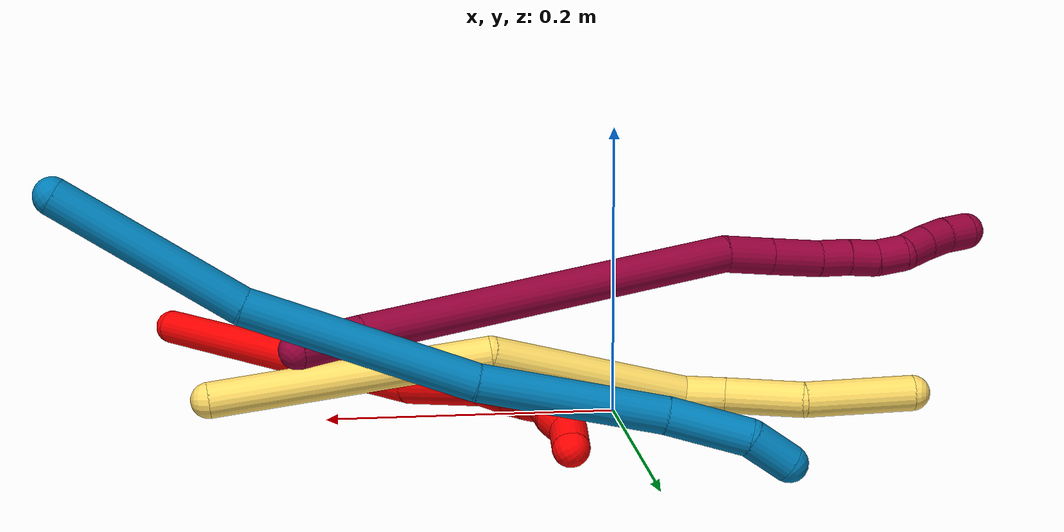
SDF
<sdf version="1.7">
 <world name="default">
  <model name="2">
   <static>0</static>
   <link name="2">
    <collision name="collision-cylinder-e_1_1_4">
     <pose>-0.038239 0.066086 -0.106243 -2.58513 -0.296604 0.96381</pose>
     <geometry><cylinder><radius>0.0125</radius><length>0.261666</length></cylinder></geometry>
     <surface>
      <friction><ode><mu>1.16</mu><mu2>1.16</mu2><slip1>0</slip1><slip2>0</slip2></ode></friction>
      <contact><ode><kp>1e+06</kp><kd>1</kd><max_vel>0</max_vel><min_depth>0.001</min_depth></ode></contact>
     </surface>
    </collision>
    <visual name="visual-cylinder-e_1_1_4">
     <pose>-0.038239 0.066086 -0.106243 -2.58513 -0.296604 0.96381</pose>
     <geometry><cylinder><radius>0.0125</radius><length>0.261666</length></cylinder></geometry>
     <material><ambient>1 0 0 1</ambient></material>
    </visual>
    <collision name="collision-cylinder-e_2_4_5">
     <pose>-0.092479 0.145703 -0.247485 -2.7727 -0.403086 1.66155</pose>
     <geometry><cylinder><radius>0.0125</radius><length>0.081585</length></cylinder></geometry>
     <surface>
      <friction><ode><mu>1.16</mu><mu2>1.16</mu2><slip1>0</slip1><slip2>0</slip2></ode></friction>
      <contact><ode><kp>1e+06</kp><kd>1</kd><max_vel>0</max_vel><min_depth>0.001</min_depth></ode></contact>
     </surface>
    </collision>
    <visual name="visual-cylinder-e_2_4_5">
     <pose>-0.092479 0.145703 -0.247485 -2.7727 -0.403086 1.66155</pose>
     <geometry><cylinder><radius>0.0125</radius><length>0.081585</length></cylinder></geometry>
     <material><ambient>1 0 0 1</ambient></material>
    </visual>
    <collision name="collision-cylinder-e_3_5_6">
     <pose>-0.125262 0.168226 -0.300786 -2.6849 -0.688588 1.99148</pose>
     <geometry><cylinder><radius>0.0125</radius><length>0.052819</length></cylinder></geometry>
     <surface>
      <friction><ode><mu>1.16</mu><mu2>1.16</mu2><slip1>0</slip1><slip2>0</slip2></ode></friction>
      <contact><ode><kp>1e+06</kp><kd>1</kd><max_vel>0</max_vel><min_depth>0.001</min_depth></ode></contact>
     </surface>
    </collision>
    <visual name="visual-cylinder-e_3_5_6">
     <pose>-0.125262 0.168226 -0.300786 -2.6849 -0.688588 1.99148</pose>
     <geometry><cylinder><radius>0.0125</radius><length>0.052819</length></cylinder></geometry>
     <material><ambient>1 0 0 1</ambient></material>
    </visual>
    <collision name="collision-cylinder-e_4_6_7">
     <pose>-0.149439 0.180814 -0.327362 -2.73158 -0.686654 2.08797</pose>
     <geometry><cylinder><radius>0.0125</radius><length>0.023329</length></cylinder></geometry>
     <surface>
      <friction><ode><mu>1.16</mu><mu2>1.16</mu2><slip1>0</slip1><slip2>0</slip2></ode></friction>
      <contact><ode><kp>1e+06</kp><kd>1</kd><max_vel>0</max_vel><min_depth>0.001</min_depth></ode></contact>
     </surface>
    </collision>
    <visual name="visual-cylinder-e_4_6_7">
     <pose>-0.149439 0.180814 -0.327362 -2.73158 -0.686654 2.08797</pose>
     <geometry><cylinder><radius>0.0125</radius><length>0.023329</length></cylinder></geometry>
     <material><ambient>1 0 0 1</ambient></material>
    </visual>
    <collision name="collision-cylinder-e_5_7_8">
     <pose>-0.161943 0.188079 -0.343679 -2.71372 -0.524039 1.77984</pose>
     <geometry><cylinder><radius>0.0125</radius><length>0.020422</length></cylinder></geometry>
     <surface>
      <friction><ode><mu>1.16</mu><mu2>1.16</mu2><slip1>0</slip1><slip2>0</slip2></ode></friction>
      <contact><ode><kp>1e+06</kp><kd>1</kd><max_vel>0</max_vel><min_depth>0.001</min_depth></ode></contact>
     </surface>
    </collision>
    <visual name="visual-cylinder-e_5_7_8">
     <pose>-0.161943 0.188079 -0.343679 -2.71372 -0.524039 1.77984</pose>
     <geometry><cylinder><radius>0.0125</radius><length>0.020422</length></cylinder></geometry>
     <material><ambient>1 0 0 1</ambient></material>
    </visual>
    <collision name="collision-cylinder-e_6_8_9">
     <pose>-0.174393 0.19704 -0.356152 -2.26762 -0.816232 1.49365</pose>
     <geometry><cylinder><radius>0.0125</radius><length>0.02015</length></cylinder></geometry>
     <surface>
      <friction><ode><mu>1.16</mu><mu2>1.16</mu2><slip1>0</slip1><slip2>0</slip2></ode></friction>
      <contact><ode><kp>1e+06</kp><kd>1</kd><max_vel>0</max_vel><min_depth>0.001</min_depth></ode></contact>
     </surface>
    </collision>
    <visual name="visual-cylinder-e_6_8_9">
     <pose>-0.174393 0.19704 -0.356152 -2.26762 -0.816232 1.49365</pose>
     <geometry><cylinder><radius>0.0125</radius><length>0.02015</length></cylinder></geometry>
     <material><ambient>1 0 0 1</ambient></material>
    </visual>
    <collision name="collision-cylinder-e_7_9_10">
     <pose>-0.187481 0.207984 -0.366501 -2.37936 -0.612196 1.3356</pose>
     <geometry><cylinder><radius>0.0125</radius><length>0.020002</length></cylinder></geometry>
     <surface>
      <friction><ode><mu>1.16</mu><mu2>1.16</mu2><slip1>0</slip1><slip2>0</slip2></ode></friction>
      <contact><ode><kp>1e+06</kp><kd>1</kd><max_vel>0</max_vel><min_depth>0.001</min_depth></ode></contact>
     </surface>
    </collision>
    <visual name="visual-cylinder-e_7_9_10">
     <pose>-0.187481 0.207984 -0.366501 -2.37936 -0.612196 1.3356</pose>
     <geometry><cylinder><radius>0.0125</radius><length>0.020002</length></cylinder></geometry>
     <material><ambient>1 0 0 1</ambient></material>
    </visual>
    <collision name="collision-cylinder-e_8_10_2">
     <pose>-0.200952 0.219665 -0.374482 -1.90019 -0.881034 1.16583</pose>
     <geometry><cylinder><radius>0.0125</radius><length>0.020027</length></cylinder></geometry>
     <surface>
      <friction><ode><mu>1.16</mu><mu2>1.16</mu2><slip1>0</slip1><slip2>0</slip2></ode></friction>
      <contact><ode><kp>1e+06</kp><kd>1</kd><max_vel>0</max_vel><min_depth>0.001</min_depth></ode></contact>
     </surface>
    </collision>
    <visual name="visual-cylinder-e_8_10_2">
     <pose>-0.200952 0.219665 -0.374482 -1.90019 -0.881034 1.16583</pose>
     <geometry><cylinder><radius>0.0125</radius><length>0.020027</length></cylinder></geometry>
     <material><ambient>1 0 0 1</ambient></material>
    </visual>
    <collision name="collision-sphere-2">
     <pose>-0.208677 0.225695 -0.376543 0 -0 0</pose>
     <geometry><sphere><radius>0.0125</radius></sphere></geometry>
     <surface>
      <friction><ode><mu>1.16</mu><mu2>1.16</mu2><slip1>0</slip1><slip2>0</slip2></ode></friction>
      <contact><ode><kp>1e+06</kp><kd>1</kd><max_vel>0</max_vel><min_depth>0.001</min_depth></ode></contact>
     </surface>
    </collision>
    <visual name="visual-sphere-2">
     <pose>-0.208677 0.225695 -0.376543 0 -0 0</pose>
     <geometry><sphere><radius>0.0125</radius></sphere></geometry>
     <material><ambient>1 0 0 1</ambient></material>
    </visual>
    <collision name="collision-sphere-10">
     <pose>-0.193228 0.213636 -0.372421 0 -0 0</pose>
     <geometry><sphere><radius>0.0125</radius></sphere></geometry>
     <surface>
      <friction><ode><mu>1.16</mu><mu2>1.16</mu2><slip1>0</slip1><slip2>0</slip2></ode></friction>
      <contact><ode><kp>1e+06</kp><kd>1</kd><max_vel>0</max_vel><min_depth>0.001</min_depth></ode></contact>
     </surface>
    </collision>
    <visual name="visual-sphere-10">
     <pose>-0.193228 0.213636 -0.372421 0 -0 0</pose>
     <geometry><sphere><radius>0.0125</radius></sphere></geometry>
     <material><ambient>1 0 0 1</ambient></material>
    </visual>
    <collision name="collision-sphere-9">
     <pose>-0.181734 0.202332 -0.360581 0 -0 0</pose>
     <geometry><sphere><radius>0.0125</radius></sphere></geometry>
     <surface>
      <friction><ode><mu>1.16</mu><mu2>1.16</mu2><slip1>0</slip1><slip2>0</slip2></ode></friction>
      <contact><ode><kp>1e+06</kp><kd>1</kd><max_vel>0</max_vel><min_depth>0.001</min_depth></ode></contact>
     </surface>
    </collision>
    <visual name="visual-sphere-9">
     <pose>-0.181734 0.202332 -0.360581 0 -0 0</pose>
     <geometry><sphere><radius>0.0125</radius></sphere></geometry>
     <material><ambient>1 0 0 1</ambient></material>
    </visual>
    <collision name="collision-sphere-4">
     <pose>-0.076478 0.132173 -0.212487 0 -0 0</pose>
     <geometry><sphere><radius>0.0125</radius></sphere></geometry>
     <surface>
      <friction><ode><mu>1.16</mu><mu2>1.16</mu2><slip1>0</slip1><slip2>0</slip2></ode></friction>
      <contact><ode><kp>1e+06</kp><kd>1</kd><max_vel>0</max_vel><min_depth>0.001</min_depth></ode></contact>
     </surface>
    </collision>
    <visual name="visual-sphere-4">
     <pose>-0.076478 0.132173 -0.212487 0 -0 0</pose>
     <geometry><sphere><radius>0.0125</radius></sphere></geometry>
     <material><ambient>1 0 0 1</ambient></material>
    </visual>
    <collision name="collision-sphere-1">
     <geometry><sphere><radius>0.0125</radius></sphere></geometry>
     <surface>
      <friction><ode><mu>1.16</mu><mu2>1.16</mu2><slip1>0</slip1><slip2>0</slip2></ode></friction>
      <contact><ode><kp>1e+06</kp><kd>1</kd><max_vel>0</max_vel><min_depth>0.001</min_depth></ode></contact>
     </surface>
    </collision>
    <visual name="visual-sphere-1">
     <geometry><sphere><radius>0.0125</radius></sphere></geometry>
     <material><ambient>1 0 0 1</ambient></material>
    </visual>
    <collision name="collision-sphere-8">
     <pose>-0.167053 0.191747 -0.351723 0 -0 0</pose>
     <geometry><sphere><radius>0.0125</radius></sphere></geometry>
     <surface>
      <friction><ode><mu>1.16</mu><mu2>1.16</mu2><slip1>0</slip1><slip2>0</slip2></ode></friction>
      <contact><ode><kp>1e+06</kp><kd>1</kd><max_vel>0</max_vel><min_depth>0.001</min_depth></ode></contact>
     </surface>
    </collision>
    <visual name="visual-sphere-8">
     <pose>-0.167053 0.191747 -0.351723 0 -0 0</pose>
     <geometry><sphere><radius>0.0125</radius></sphere></geometry>
     <material><ambient>1 0 0 1</ambient></material>
    </visual>
    <collision name="collision-sphere-5">
     <pose>-0.10848 0.159233 -0.282484 0 -0 0</pose>
     <geometry><sphere><radius>0.0125</radius></sphere></geometry>
     <surface>
      <friction><ode><mu>1.16</mu><mu2>1.16</mu2><slip1>0</slip1><slip2>0</slip2></ode></friction>
      <contact><ode><kp>1e+06</kp><kd>1</kd><max_vel>0</max_vel><min_depth>0.001</min_depth></ode></contact>
     </surface>
    </collision>
    <visual name="visual-sphere-5">
     <pose>-0.10848 0.159233 -0.282484 0 -0 0</pose>
     <geometry><sphere><radius>0.0125</radius></sphere></geometry>
     <material><ambient>1 0 0 1</ambient></material>
    </visual>
    <collision name="collision-sphere-6">
     <pose>-0.142044 0.177218 -0.319088 0 -0 0</pose>
     <geometry><sphere><radius>0.0125</radius></sphere></geometry>
     <surface>
      <friction><ode><mu>1.16</mu><mu2>1.16</mu2><slip1>0</slip1><slip2>0</slip2></ode></friction>
      <contact><ode><kp>1e+06</kp><kd>1</kd><max_vel>0</max_vel><min_depth>0.001</min_depth></ode></contact>
     </surface>
    </collision>
    <visual name="visual-sphere-6">
     <pose>-0.142044 0.177218 -0.319088 0 -0 0</pose>
     <geometry><sphere><radius>0.0125</radius></sphere></geometry>
     <material><ambient>1 0 0 1</ambient></material>
    </visual>
    <collision name="collision-sphere-7">
     <pose>-0.156834 0.18441 -0.335635 0 -0 0</pose>
     <geometry><sphere><radius>0.0125</radius></sphere></geometry>
     <surface>
      <friction><ode><mu>1.16</mu><mu2>1.16</mu2><slip1>0</slip1><slip2>0</slip2></ode></friction>
      <contact><ode><kp>1e+06</kp><kd>1</kd><max_vel>0</max_vel><min_depth>0.001</min_depth></ode></contact>
     </surface>
    </collision>
    <visual name="visual-sphere-7">
     <pose>-0.156834 0.18441 -0.335635 0 -0 0</pose>
     <geometry><sphere><radius>0.0125</radius></sphere></geometry>
     <material><ambient>1 0 0 1</ambient></material>
    </visual>
    <inertial>
     <pose>-0.084498 0.117308 -0.201082 0 -0 0</pose>
     <mass>0.5</mass>
     <inertia>
      <ixx>0.002036</ixx>
      <ixy>0</ixy>
      <ixz>0</ixz>
      <iyy>0.000745</iyy>
      <iyz>0</iyz>
      <izz>-0.000341</izz>
     </inertia>
    </inertial>
   </link>
   <pose>0.304371 -0.25389 0.009954 -2.10387 0.059486 -2.1515</pose>
  </model>
  <model name="5">
   <static>0</static>
   <link name="5">
    <collision name="collision-cylinder-e_1_1_4">
     <pose>-0.011616 -0.029266 0.091199 0.310525 -0.120684 -0.018912</pose>
     <geometry><cylinder><radius>0.0125</radius><length>0.192964</length></cylinder></geometry>
     <surface>
      <friction><ode><mu>1.16</mu><mu2>1.16</mu2><slip1>0</slip1><slip2>0</slip2></ode></friction>
      <contact><ode><kp>1e+06</kp><kd>1</kd><max_vel>0</max_vel><min_depth>0.001</min_depth></ode></contact>
     </surface>
    </collision>
    <visual name="visual-cylinder-e_1_1_4">
     <pose>-0.011616 -0.029266 0.091199 0.310525 -0.120684 -0.018912</pose>
     <geometry><cylinder><radius>0.0125</radius><length>0.192964</length></cylinder></geometry>
     <material><ambient>1 0.858824 0.4 1</ambient></material>
    </visual>
    <collision name="collision-cylinder-e_2_4_5">
     <pose>-0.061874 -0.071026 0.242768 0.204061 -0.559913 -0.058856</pose>
     <geometry><cylinder><radius>0.0125</radius><length>0.145517</length></cylinder></geometry>
     <surface>
      <friction><ode><mu>1.16</mu><mu2>1.16</mu2><slip1>0</slip1><slip2>0</slip2></ode></friction>
      <contact><ode><kp>1e+06</kp><kd>1</kd><max_vel>0</max_vel><min_depth>0.001</min_depth></ode></contact>
     </surface>
    </collision>
    <visual name="visual-cylinder-e_2_4_5">
     <pose>-0.061874 -0.071026 0.242768 0.204061 -0.559913 -0.058856</pose>
     <geometry><cylinder><radius>0.0125</radius><length>0.145517</length></cylinder></geometry>
     <material><ambient>1 0.858824 0.4 1</ambient></material>
    </visual>
    <collision name="collision-cylinder-e_3_5_6">
     <pose>-0.102304 -0.084247 0.317879 0.049379 -0.120485 -0.002979</pose>
     <geometry><cylinder><radius>0.0125</radius><length>0.029736</length></cylinder></geometry>
     <surface>
      <friction><ode><mu>1.16</mu><mu2>1.16</mu2><slip1>0</slip1><slip2>0</slip2></ode></friction>
      <contact><ode><kp>1e+06</kp><kd>1</kd><max_vel>0</max_vel><min_depth>0.001</min_depth></ode></contact>
     </surface>
    </collision>
    <visual name="visual-cylinder-e_3_5_6">
     <pose>-0.102304 -0.084247 0.317879 0.049379 -0.120485 -0.002979</pose>
     <geometry><cylinder><radius>0.0125</radius><length>0.029736</length></cylinder></geometry>
     <material><ambient>1 0.858824 0.4 1</ambient></material>
    </visual>
    <collision name="collision-cylinder-e_4_6_7">
     <pose>-0.105884 -0.084826 0.359952 -0.005482 -0.065514 0.00018</pose>
     <geometry><cylinder><radius>0.0125</radius><length>0.05478</length></cylinder></geometry>
     <surface>
      <friction><ode><mu>1.16</mu><mu2>1.16</mu2><slip1>0</slip1><slip2>0</slip2></ode></friction>
      <contact><ode><kp>1e+06</kp><kd>1</kd><max_vel>0</max_vel><min_depth>0.001</min_depth></ode></contact>
     </surface>
    </collision>
    <visual name="visual-cylinder-e_4_6_7">
     <pose>-0.105884 -0.084826 0.359952 -0.005482 -0.065514 0.00018</pose>
     <geometry><cylinder><radius>0.0125</radius><length>0.05478</length></cylinder></geometry>
     <material><ambient>1 0.858824 0.4 1</ambient></material>
    </visual>
    <collision name="collision-cylinder-e_5_7_2">
     <pose>-0.116389 -0.094491 0.423479 0.264791 -0.228251 -0.030527</pose>
     <geometry><cylinder><radius>0.0125</radius><length>0.077004</length></cylinder></geometry>
     <surface>
      <friction><ode><mu>1.16</mu><mu2>1.16</mu2><slip1>0</slip1><slip2>0</slip2></ode></friction>
      <contact><ode><kp>1e+06</kp><kd>1</kd><max_vel>0</max_vel><min_depth>0.001</min_depth></ode></contact>
     </surface>
    </collision>
    <visual name="visual-cylinder-e_5_7_2">
     <pose>-0.116389 -0.094491 0.423479 0.264791 -0.228251 -0.030527</pose>
     <geometry><cylinder><radius>0.0125</radius><length>0.077004</length></cylinder></geometry>
     <material><ambient>1 0.858824 0.4 1</ambient></material>
    </visual>
    <collision name="collision-sphere-2">
     <pose>-0.125101 -0.104306 0.459675 0 -0 0</pose>
     <geometry><sphere><radius>0.0125</radius></sphere></geometry>
     <surface>
      <friction><ode><mu>1.16</mu><mu2>1.16</mu2><slip1>0</slip1><slip2>0</slip2></ode></friction>
      <contact><ode><kp>1e+06</kp><kd>1</kd><max_vel>0</max_vel><min_depth>0.001</min_depth></ode></contact>
     </surface>
    </collision>
    <visual name="visual-sphere-2">
     <pose>-0.125101 -0.104306 0.459675 0 -0 0</pose>
     <geometry><sphere><radius>0.0125</radius></sphere></geometry>
     <material><ambient>1 0.858824 0.4 1</ambient></material>
    </visual>
    <collision name="collision-sphere-7">
     <pose>-0.107677 -0.084676 0.387283 0 -0 0</pose>
     <geometry><sphere><radius>0.0125</radius></sphere></geometry>
     <surface>
      <friction><ode><mu>1.16</mu><mu2>1.16</mu2><slip1>0</slip1><slip2>0</slip2></ode></friction>
      <contact><ode><kp>1e+06</kp><kd>1</kd><max_vel>0</max_vel><min_depth>0.001</min_depth></ode></contact>
     </surface>
    </collision>
    <visual name="visual-sphere-7">
     <pose>-0.107677 -0.084676 0.387283 0 -0 0</pose>
     <geometry><sphere><radius>0.0125</radius></sphere></geometry>
     <material><ambient>1 0.858824 0.4 1</ambient></material>
    </visual>
    <collision name="collision-sphere-6">
     <pose>-0.104091 -0.084976 0.332621 0 -0 0</pose>
     <geometry><sphere><radius>0.0125</radius></sphere></geometry>
     <surface>
      <friction><ode><mu>1.16</mu><mu2>1.16</mu2><slip1>0</slip1><slip2>0</slip2></ode></friction>
      <contact><ode><kp>1e+06</kp><kd>1</kd><max_vel>0</max_vel><min_depth>0.001</min_depth></ode></contact>
     </surface>
    </collision>
    <visual name="visual-sphere-6">
     <pose>-0.104091 -0.084976 0.332621 0 -0 0</pose>
     <geometry><sphere><radius>0.0125</radius></sphere></geometry>
     <material><ambient>1 0.858824 0.4 1</ambient></material>
    </visual>
    <collision name="collision-sphere-5">
     <pose>-0.100517 -0.083519 0.303137 0 -0 0</pose>
     <geometry><sphere><radius>0.0125</radius></sphere></geometry>
     <surface>
      <friction><ode><mu>1.16</mu><mu2>1.16</mu2><slip1>0</slip1><slip2>0</slip2></ode></friction>
      <contact><ode><kp>1e+06</kp><kd>1</kd><max_vel>0</max_vel><min_depth>0.001</min_depth></ode></contact>
     </surface>
    </collision>
    <visual name="visual-sphere-5">
     <pose>-0.100517 -0.083519 0.303137 0 -0 0</pose>
     <geometry><sphere><radius>0.0125</radius></sphere></geometry>
     <material><ambient>1 0.858824 0.4 1</ambient></material>
    </visual>
    <collision name="collision-sphere-1">
     <geometry><sphere><radius>0.0125</radius></sphere></geometry>
     <surface>
      <friction><ode><mu>1.16</mu><mu2>1.16</mu2><slip1>0</slip1><slip2>0</slip2></ode></friction>
      <contact><ode><kp>1e+06</kp><kd>1</kd><max_vel>0</max_vel><min_depth>0.001</min_depth></ode></contact>
     </surface>
    </collision>
    <visual name="visual-sphere-1">
     <geometry><sphere><radius>0.0125</radius></sphere></geometry>
     <material><ambient>1 0.858824 0.4 1</ambient></material>
    </visual>
    <collision name="collision-sphere-4">
     <pose>-0.023231 -0.058533 0.182398 0 -0 0</pose>
     <geometry><sphere><radius>0.0125</radius></sphere></geometry>
     <surface>
      <friction><ode><mu>1.16</mu><mu2>1.16</mu2><slip1>0</slip1><slip2>0</slip2></ode></friction>
      <contact><ode><kp>1e+06</kp><kd>1</kd><max_vel>0</max_vel><min_depth>0.001</min_depth></ode></contact>
     </surface>
    </collision>
    <visual name="visual-sphere-4">
     <pose>-0.023231 -0.058533 0.182398 0 -0 0</pose>
     <geometry><sphere><radius>0.0125</radius></sphere></geometry>
     <material><ambient>1 0.858824 0.4 1</ambient></material>
    </visual>
    <inertial>
     <pose>-0.0581 -0.060822 0.22941 0 -0 0</pose>
     <mass>0.5</mass>
     <inertia>
      <ixx>0.000847</ixx>
      <ixy>0</ixy>
      <ixz>0</ixz>
      <iyy>0.000861</iyy>
      <iyz>0</iyz>
      <izz>0.000499</izz>
     </inertia>
    </inertial>
   </link>
   <pose>0.280672 0.034126 0.025583 -1.51187 -0.876841 1.20345</pose>
  </model>
  <model name="8">
   <static>0</static>
   <link name="8">
    <collision name="collision-cylinder-e_1_1_4">
     <pose>-0.009832 -0.004861 -0.01902 2.8914 -0.464292 -2.16385</pose>
     <geometry><cylinder><radius>0.0125</radius><length>0.043911</length></cylinder></geometry>
     <surface>
      <friction><ode><mu>1.16</mu><mu2>1.16</mu2><slip1>0</slip1><slip2>0</slip2></ode></friction>
      <contact><ode><kp>1e+06</kp><kd>1</kd><max_vel>0</max_vel><min_depth>0.001</min_depth></ode></contact>
     </surface>
    </collision>
    <visual name="visual-cylinder-e_1_1_4">
     <pose>-0.009832 -0.004861 -0.01902 2.8914 -0.464292 -2.16385</pose>
     <geometry><cylinder><radius>0.0125</radius><length>0.043911</length></cylinder></geometry>
     <material><ambient>0.584314 0 0.227451 1</ambient></material>
    </visual>
    <collision name="collision-cylinder-e_2_4_5">
     <pose>-0.080462 -0.044699 -0.150646 2.84042 -0.476072 -2.02387</pose>
     <geometry><cylinder><radius>0.0125</radius><length>0.265331</length></cylinder></geometry>
     <surface>
      <friction><ode><mu>1.16</mu><mu2>1.16</mu2><slip1>0</slip1><slip2>0</slip2></ode></friction>
      <contact><ode><kp>1e+06</kp><kd>1</kd><max_vel>0</max_vel><min_depth>0.001</min_depth></ode></contact>
     </surface>
    </collision>
    <visual name="visual-cylinder-e_2_4_5">
     <pose>-0.080462 -0.044699 -0.150646 2.84042 -0.476072 -2.02387</pose>
     <geometry><cylinder><radius>0.0125</radius><length>0.265331</length></cylinder></geometry>
     <material><ambient>0.584314 0 0.227451 1</ambient></material>
    </visual>
    <collision name="collision-cylinder-e_3_5_6">
     <pose>-0.151392 -0.086022 -0.274377 2.62331 -0.669222 -1.83872</pose>
     <geometry><cylinder><radius>0.0125</radius><length>0.032659</length></cylinder></geometry>
     <surface>
      <friction><ode><mu>1.16</mu><mu2>1.16</mu2><slip1>0</slip1><slip2>0</slip2></ode></friction>
      <contact><ode><kp>1e+06</kp><kd>1</kd><max_vel>0</max_vel><min_depth>0.001</min_depth></ode></contact>
     </surface>
    </collision>
    <visual name="visual-cylinder-e_3_5_6">
     <pose>-0.151392 -0.086022 -0.274377 2.62331 -0.669222 -1.83872</pose>
     <geometry><cylinder><radius>0.0125</radius><length>0.032659</length></cylinder></geometry>
     <material><ambient>0.584314 0 0.227451 1</ambient></material>
    </visual>
    <collision name="collision-cylinder-e_4_6_7">
     <pose>-0.172486 -0.099251 -0.297675 2.62684 -0.664886 -1.83885</pose>
     <geometry><cylinder><radius>0.0125</radius><length>0.03554</length></cylinder></geometry>
     <surface>
      <friction><ode><mu>1.16</mu><mu2>1.16</mu2><slip1>0</slip1><slip2>0</slip2></ode></friction>
      <contact><ode><kp>1e+06</kp><kd>1</kd><max_vel>0</max_vel><min_depth>0.001</min_depth></ode></contact>
     </surface>
    </collision>
    <visual name="visual-cylinder-e_4_6_7">
     <pose>-0.172486 -0.099251 -0.297675 2.62684 -0.664886 -1.83885</pose>
     <geometry><cylinder><radius>0.0125</radius><length>0.03554</length></cylinder></geometry>
     <material><ambient>0.584314 0 0.227451 1</ambient></material>
    </visual>
    <collision name="collision-cylinder-e_5_7_8">
     <pose>-0.189126 -0.110811 -0.317683 2.60363 -0.556556 -1.60652</pose>
     <geometry><cylinder><radius>0.0125</radius><length>0.021493</length></cylinder></geometry>
     <surface>
      <friction><ode><mu>1.16</mu><mu2>1.16</mu2><slip1>0</slip1><slip2>0</slip2></ode></friction>
      <contact><ode><kp>1e+06</kp><kd>1</kd><max_vel>0</max_vel><min_depth>0.001</min_depth></ode></contact>
     </surface>
    </collision>
    <visual name="visual-cylinder-e_5_7_8">
     <pose>-0.189126 -0.110811 -0.317683 2.60363 -0.556556 -1.60652</pose>
     <geometry><cylinder><radius>0.0125</radius><length>0.021493</length></cylinder></geometry>
     <material><ambient>0.584314 0 0.227451 1</ambient></material>
    </visual>
    <collision name="collision-cylinder-e_6_8_9">
     <pose>-0.200688 -0.120074 -0.332265 2.54438 -0.624923 -1.61909</pose>
     <geometry><cylinder><radius>0.0125</radius><length>0.020118</length></cylinder></geometry>
     <surface>
      <friction><ode><mu>1.16</mu><mu2>1.16</mu2><slip1>0</slip1><slip2>0</slip2></ode></friction>
      <contact><ode><kp>1e+06</kp><kd>1</kd><max_vel>0</max_vel><min_depth>0.001</min_depth></ode></contact>
     </surface>
    </collision>
    <visual name="visual-cylinder-e_6_8_9">
     <pose>-0.200688 -0.120074 -0.332265 2.54438 -0.624923 -1.61909</pose>
     <geometry><cylinder><radius>0.0125</radius><length>0.020118</length></cylinder></geometry>
     <material><ambient>0.584314 0 0.227451 1</ambient></material>
    </visual>
    <collision name="collision-cylinder-e_7_9_10">
     <pose>-0.210806 -0.129111 -0.34722 2.64488 -0.425603 -1.41137</pose>
     <geometry><cylinder><radius>0.0125</radius><length>0.020503</length></cylinder></geometry>
     <surface>
      <friction><ode><mu>1.16</mu><mu2>1.16</mu2><slip1>0</slip1><slip2>0</slip2></ode></friction>
      <contact><ode><kp>1e+06</kp><kd>1</kd><max_vel>0</max_vel><min_depth>0.001</min_depth></ode></contact>
     </surface>
    </collision>
    <visual name="visual-cylinder-e_7_9_10">
     <pose>-0.210806 -0.129111 -0.34722 2.64488 -0.425603 -1.41137</pose>
     <geometry><cylinder><radius>0.0125</radius><length>0.020503</length></cylinder></geometry>
     <material><ambient>0.584314 0 0.227451 1</ambient></material>
    </visual>
    <collision name="collision-cylinder-e_8_10_11">
     <pose>-0.218991 -0.133524 -0.364727 -3.13766 -0.401947 3.12229</pose>
     <geometry><cylinder><radius>0.0125</radius><length>0.020208</length></cylinder></geometry>
     <surface>
      <friction><ode><mu>1.16</mu><mu2>1.16</mu2><slip1>0</slip1><slip2>0</slip2></ode></friction>
      <contact><ode><kp>1e+06</kp><kd>1</kd><max_vel>0</max_vel><min_depth>0.001</min_depth></ode></contact>
     </surface>
    </collision>
    <visual name="visual-cylinder-e_8_10_11">
     <pose>-0.218991 -0.133524 -0.364727 -3.13766 -0.401947 3.12229</pose>
     <geometry><cylinder><radius>0.0125</radius><length>0.020208</length></cylinder></geometry>
     <material><ambient>0.584314 0 0.227451 1</ambient></material>
    </visual>
    <collision name="collision-cylinder-e_9_11_12">
     <pose>-0.227221 -0.133817 -0.383123 3.10537 -0.439176 -2.97962</pose>
     <geometry><cylinder><radius>0.0125</radius><length>0.020116</length></cylinder></geometry>
     <surface>
      <friction><ode><mu>1.16</mu><mu2>1.16</mu2><slip1>0</slip1><slip2>0</slip2></ode></friction>
      <contact><ode><kp>1e+06</kp><kd>1</kd><max_vel>0</max_vel><min_depth>0.001</min_depth></ode></contact>
     </surface>
    </collision>
    <visual name="visual-cylinder-e_9_11_12">
     <pose>-0.227221 -0.133817 -0.383123 3.10537 -0.439176 -2.97962</pose>
     <geometry><cylinder><radius>0.0125</radius><length>0.020116</length></cylinder></geometry>
     <material><ambient>0.584314 0 0.227451 1</ambient></material>
    </visual>
    <collision name="collision-cylinder-e_10_12_2">
     <pose>-0.236626 -0.135788 -0.400719 2.95087 -0.534912 -2.4699</pose>
     <geometry><cylinder><radius>0.0125</radius><length>0.020122</length></cylinder></geometry>
     <surface>
      <friction><ode><mu>1.16</mu><mu2>1.16</mu2><slip1>0</slip1><slip2>0</slip2></ode></friction>
      <contact><ode><kp>1e+06</kp><kd>1</kd><max_vel>0</max_vel><min_depth>0.001</min_depth></ode></contact>
     </surface>
    </collision>
    <visual name="visual-cylinder-e_10_12_2">
     <pose>-0.236626 -0.135788 -0.400719 2.95087 -0.534912 -2.4699</pose>
     <geometry><cylinder><radius>0.0125</radius><length>0.020122</length></cylinder></geometry>
     <material><ambient>0.584314 0 0.227451 1</ambient></material>
    </visual>
    <collision name="collision-sphere-2">
     <pose>-0.241754 -0.137429 -0.409217 0 -0 0</pose>
     <geometry><sphere><radius>0.0125</radius></sphere></geometry>
     <surface>
      <friction><ode><mu>1.16</mu><mu2>1.16</mu2><slip1>0</slip1><slip2>0</slip2></ode></friction>
      <contact><ode><kp>1e+06</kp><kd>1</kd><max_vel>0</max_vel><min_depth>0.001</min_depth></ode></contact>
     </surface>
    </collision>
    <visual name="visual-sphere-2">
     <pose>-0.241754 -0.137429 -0.409217 0 -0 0</pose>
     <geometry><sphere><radius>0.0125</radius></sphere></geometry>
     <material><ambient>0.584314 0 0.227451 1</ambient></material>
    </visual>
    <collision name="collision-sphere-12">
     <pose>-0.231497 -0.134147 -0.39222 0 -0 0</pose>
     <geometry><sphere><radius>0.0125</radius></sphere></geometry>
     <surface>
      <friction><ode><mu>1.16</mu><mu2>1.16</mu2><slip1>0</slip1><slip2>0</slip2></ode></friction>
      <contact><ode><kp>1e+06</kp><kd>1</kd><max_vel>0</max_vel><min_depth>0.001</min_depth></ode></contact>
     </surface>
    </collision>
    <visual name="visual-sphere-12">
     <pose>-0.231497 -0.134147 -0.39222 0 -0 0</pose>
     <geometry><sphere><radius>0.0125</radius></sphere></geometry>
     <material><ambient>0.584314 0 0.227451 1</ambient></material>
    </visual>
    <collision name="collision-sphere-11">
     <pose>-0.222944 -0.133487 -0.374026 0 -0 0</pose>
     <geometry><sphere><radius>0.0125</radius></sphere></geometry>
     <surface>
      <friction><ode><mu>1.16</mu><mu2>1.16</mu2><slip1>0</slip1><slip2>0</slip2></ode></friction>
      <contact><ode><kp>1e+06</kp><kd>1</kd><max_vel>0</max_vel><min_depth>0.001</min_depth></ode></contact>
     </surface>
    </collision>
    <visual name="visual-sphere-11">
     <pose>-0.222944 -0.133487 -0.374026 0 -0 0</pose>
     <geometry><sphere><radius>0.0125</radius></sphere></geometry>
     <material><ambient>0.584314 0 0.227451 1</ambient></material>
    </visual>
    <collision name="collision-sphere-10">
     <pose>-0.215038 -0.133561 -0.355428 0 -0 0</pose>
     <geometry><sphere><radius>0.0125</radius></sphere></geometry>
     <surface>
      <friction><ode><mu>1.16</mu><mu2>1.16</mu2><slip1>0</slip1><slip2>0</slip2></ode></friction>
      <contact><ode><kp>1e+06</kp><kd>1</kd><max_vel>0</max_vel><min_depth>0.001</min_depth></ode></contact>
     </surface>
    </collision>
    <visual name="visual-sphere-10">
     <pose>-0.215038 -0.133561 -0.355428 0 -0 0</pose>
     <geometry><sphere><radius>0.0125</radius></sphere></geometry>
     <material><ambient>0.584314 0 0.227451 1</ambient></material>
    </visual>
    <collision name="collision-sphere-9">
     <pose>-0.206573 -0.124662 -0.339011 0 -0 0</pose>
     <geometry><sphere><radius>0.0125</radius></sphere></geometry>
     <surface>
      <friction><ode><mu>1.16</mu><mu2>1.16</mu2><slip1>0</slip1><slip2>0</slip2></ode></friction>
      <contact><ode><kp>1e+06</kp><kd>1</kd><max_vel>0</max_vel><min_depth>0.001</min_depth></ode></contact>
     </surface>
    </collision>
    <visual name="visual-sphere-9">
     <pose>-0.206573 -0.124662 -0.339011 0 -0 0</pose>
     <geometry><sphere><radius>0.0125</radius></sphere></geometry>
     <material><ambient>0.584314 0 0.227451 1</ambient></material>
    </visual>
    <collision name="collision-sphere-4">
     <pose>-0.019663 -0.009721 -0.03804 0 -0 0</pose>
     <geometry><sphere><radius>0.0125</radius></sphere></geometry>
     <surface>
      <friction><ode><mu>1.16</mu><mu2>1.16</mu2><slip1>0</slip1><slip2>0</slip2></ode></friction>
      <contact><ode><kp>1e+06</kp><kd>1</kd><max_vel>0</max_vel><min_depth>0.001</min_depth></ode></contact>
     </surface>
    </collision>
    <visual name="visual-sphere-4">
     <pose>-0.019663 -0.009721 -0.03804 0 -0 0</pose>
     <geometry><sphere><radius>0.0125</radius></sphere></geometry>
     <material><ambient>0.584314 0 0.227451 1</ambient></material>
    </visual>
    <collision name="collision-sphere-1">
     <geometry><sphere><radius>0.0125</radius></sphere></geometry>
     <surface>
      <friction><ode><mu>1.16</mu><mu2>1.16</mu2><slip1>0</slip1><slip2>0</slip2></ode></friction>
      <contact><ode><kp>1e+06</kp><kd>1</kd><max_vel>0</max_vel><min_depth>0.001</min_depth></ode></contact>
     </surface>
    </collision>
    <visual name="visual-sphere-1">
     <geometry><sphere><radius>0.0125</radius></sphere></geometry>
     <material><ambient>0.584314 0 0.227451 1</ambient></material>
    </visual>
    <collision name="collision-sphere-8">
     <pose>-0.194803 -0.115487 -0.325519 0 -0 0</pose>
     <geometry><sphere><radius>0.0125</radius></sphere></geometry>
     <surface>
      <friction><ode><mu>1.16</mu><mu2>1.16</mu2><slip1>0</slip1><slip2>0</slip2></ode></friction>
      <contact><ode><kp>1e+06</kp><kd>1</kd><max_vel>0</max_vel><min_depth>0.001</min_depth></ode></contact>
     </surface>
    </collision>
    <visual name="visual-sphere-8">
     <pose>-0.194803 -0.115487 -0.325519 0 -0 0</pose>
     <geometry><sphere><radius>0.0125</radius></sphere></geometry>
     <material><ambient>0.584314 0 0.227451 1</ambient></material>
    </visual>
    <collision name="collision-sphere-5">
     <pose>-0.141262 -0.079677 -0.263252 0 -0 0</pose>
     <geometry><sphere><radius>0.0125</radius></sphere></geometry>
     <surface>
      <friction><ode><mu>1.16</mu><mu2>1.16</mu2><slip1>0</slip1><slip2>0</slip2></ode></friction>
      <contact><ode><kp>1e+06</kp><kd>1</kd><max_vel>0</max_vel><min_depth>0.001</min_depth></ode></contact>
     </surface>
    </collision>
    <visual name="visual-sphere-5">
     <pose>-0.141262 -0.079677 -0.263252 0 -0 0</pose>
     <geometry><sphere><radius>0.0125</radius></sphere></geometry>
     <material><ambient>0.584314 0 0.227451 1</ambient></material>
    </visual>
    <collision name="collision-sphere-6">
     <pose>-0.161523 -0.092366 -0.285503 0 -0 0</pose>
     <geometry><sphere><radius>0.0125</radius></sphere></geometry>
     <surface>
      <friction><ode><mu>1.16</mu><mu2>1.16</mu2><slip1>0</slip1><slip2>0</slip2></ode></friction>
      <contact><ode><kp>1e+06</kp><kd>1</kd><max_vel>0</max_vel><min_depth>0.001</min_depth></ode></contact>
     </surface>
    </collision>
    <visual name="visual-sphere-6">
     <pose>-0.161523 -0.092366 -0.285503 0 -0 0</pose>
     <geometry><sphere><radius>0.0125</radius></sphere></geometry>
     <material><ambient>0.584314 0 0.227451 1</ambient></material>
    </visual>
    <collision name="collision-sphere-7">
     <pose>-0.183449 -0.106136 -0.309847 0 -0 0</pose>
     <geometry><sphere><radius>0.0125</radius></sphere></geometry>
     <surface>
      <friction><ode><mu>1.16</mu><mu2>1.16</mu2><slip1>0</slip1><slip2>0</slip2></ode></friction>
      <contact><ode><kp>1e+06</kp><kd>1</kd><max_vel>0</max_vel><min_depth>0.001</min_depth></ode></contact>
     </surface>
    </collision>
    <visual name="visual-sphere-7">
     <pose>-0.183449 -0.106136 -0.309847 0 -0 0</pose>
     <geometry><sphere><radius>0.0125</radius></sphere></geometry>
     <material><ambient>0.584314 0 0.227451 1</ambient></material>
    </visual>
    <inertial>
     <pose>-0.118074 -0.067954 -0.208236 0 -0 0</pose>
     <mass>0.5</mass>
     <inertia>
      <ixx>-0.001909</ixx>
      <ixy>0</ixy>
      <ixz>0</ixz>
      <iyy>-0.000419</iyy>
      <iyz>0</iyz>
      <izz>0.001121</izz>
     </inertia>
    </inertial>
   </link>
   <pose>0.225209 0.154383 0.087533 -3.03808 -0.975223 0.490524</pose>
  </model>
  <model name="9">
   <static>0</static>
   <link name="9">
    <collision name="collision-cylinder-e_1_1_4">
     <pose>-0.021443 0.005167 -0.064145 -3.06121 -0.321646 2.65565</pose>
     <geometry><cylinder><radius>0.0125</radius><length>0.135662</length></cylinder></geometry>
     <surface>
      <friction><ode><mu>1.16</mu><mu2>1.16</mu2><slip1>0</slip1><slip2>0</slip2></ode></friction>
      <contact><ode><kp>1e+06</kp><kd>1</kd><max_vel>0</max_vel><min_depth>0.001</min_depth></ode></contact>
     </surface>
    </collision>
    <visual name="visual-cylinder-e_1_1_4">
     <pose>-0.021443 0.005167 -0.064145 -3.06121 -0.321646 2.65565</pose>
     <geometry><cylinder><radius>0.0125</radius><length>0.135662</length></cylinder></geometry>
     <material><ambient>0 0.490196 0.709804 1</ambient></material>
    </visual>
    <collision name="collision-cylinder-e_2_4_5">
     <pose>-0.082147 0.015952 -0.194679 -3.05717 -0.532482 2.83428</pose>
     <geometry><cylinder><radius>0.0125</radius><length>0.154667</length></cylinder></geometry>
     <surface>
      <friction><ode><mu>1.16</mu><mu2>1.16</mu2><slip1>0</slip1><slip2>0</slip2></ode></friction>
      <contact><ode><kp>1e+06</kp><kd>1</kd><max_vel>0</max_vel><min_depth>0.001</min_depth></ode></contact>
     </surface>
    </collision>
    <visual name="visual-cylinder-e_2_4_5">
     <pose>-0.082147 0.015952 -0.194679 -3.05717 -0.532482 2.83428</pose>
     <geometry><cylinder><radius>0.0125</radius><length>0.154667</length></cylinder></geometry>
     <material><ambient>0 0.490196 0.709804 1</ambient></material>
    </visual>
    <collision name="collision-cylinder-e_3_5_6">
     <pose>-0.160001 0.024008 -0.30909 -3.09088 -0.67635 2.9976</pose>
     <geometry><cylinder><radius>0.0125</radius><length>0.123315</length></cylinder></geometry>
     <surface>
      <friction><ode><mu>1.16</mu><mu2>1.16</mu2><slip1>0</slip1><slip2>0</slip2></ode></friction>
      <contact><ode><kp>1e+06</kp><kd>1</kd><max_vel>0</max_vel><min_depth>0.001</min_depth></ode></contact>
     </surface>
    </collision>
    <visual name="visual-cylinder-e_3_5_6">
     <pose>-0.160001 0.024008 -0.30909 -3.09088 -0.67635 2.9976</pose>
     <geometry><cylinder><radius>0.0125</radius><length>0.123315</length></cylinder></geometry>
     <material><ambient>0 0.490196 0.709804 1</ambient></material>
    </visual>
    <collision name="collision-cylinder-e_4_6_7">
     <pose>-0.213742 0.030522 -0.379796 -2.96381 -0.581415 2.56254</pose>
     <geometry><cylinder><radius>0.0125</radius><length>0.055157</length></cylinder></geometry>
     <surface>
      <friction><ode><mu>1.16</mu><mu2>1.16</mu2><slip1>0</slip1><slip2>0</slip2></ode></friction>
      <contact><ode><kp>1e+06</kp><kd>1</kd><max_vel>0</max_vel><min_depth>0.001</min_depth></ode></contact>
     </surface>
    </collision>
    <visual name="visual-cylinder-e_4_6_7">
     <pose>-0.213742 0.030522 -0.379796 -2.96381 -0.581415 2.56254</pose>
     <geometry><cylinder><radius>0.0125</radius><length>0.055157</length></cylinder></geometry>
     <material><ambient>0 0.490196 0.709804 1</ambient></material>
    </visual>
    <collision name="collision-cylinder-e_5_7_2">
     <pose>-0.233215 0.033517 -0.417429 3.06944 -0.281023 -2.64192</pose>
     <geometry><cylinder><radius>0.0125</radius><length>0.031199</length></cylinder></geometry>
     <surface>
      <friction><ode><mu>1.16</mu><mu2>1.16</mu2><slip1>0</slip1><slip2>0</slip2></ode></friction>
      <contact><ode><kp>1e+06</kp><kd>1</kd><max_vel>0</max_vel><min_depth>0.001</min_depth></ode></contact>
     </surface>
    </collision>
    <visual name="visual-cylinder-e_5_7_2">
     <pose>-0.233215 0.033517 -0.417429 3.06944 -0.281023 -2.64192</pose>
     <geometry><cylinder><radius>0.0125</radius><length>0.031199</length></cylinder></geometry>
     <material><ambient>0 0.490196 0.709804 1</ambient></material>
    </visual>
    <collision name="collision-sphere-2">
     <pose>-0.237541 0.032436 -0.432378 0 -0 0</pose>
     <geometry><sphere><radius>0.0125</radius></sphere></geometry>
     <surface>
      <friction><ode><mu>1.16</mu><mu2>1.16</mu2><slip1>0</slip1><slip2>0</slip2></ode></friction>
      <contact><ode><kp>1e+06</kp><kd>1</kd><max_vel>0</max_vel><min_depth>0.001</min_depth></ode></contact>
     </surface>
    </collision>
    <visual name="visual-sphere-2">
     <pose>-0.237541 0.032436 -0.432378 0 -0 0</pose>
     <geometry><sphere><radius>0.0125</radius></sphere></geometry>
     <material><ambient>0 0.490196 0.709804 1</ambient></material>
    </visual>
    <collision name="collision-sphere-7">
     <pose>-0.228888 0.034597 -0.40248 0 -0 0</pose>
     <geometry><sphere><radius>0.0125</radius></sphere></geometry>
     <surface>
      <friction><ode><mu>1.16</mu><mu2>1.16</mu2><slip1>0</slip1><slip2>0</slip2></ode></friction>
      <contact><ode><kp>1e+06</kp><kd>1</kd><max_vel>0</max_vel><min_depth>0.001</min_depth></ode></contact>
     </surface>
    </collision>
    <visual name="visual-sphere-7">
     <pose>-0.228888 0.034597 -0.40248 0 -0 0</pose>
     <geometry><sphere><radius>0.0125</radius></sphere></geometry>
     <material><ambient>0 0.490196 0.709804 1</ambient></material>
    </visual>
    <collision name="collision-sphere-6">
     <pose>-0.198596 0.026446 -0.357113 0 -0 0</pose>
     <geometry><sphere><radius>0.0125</radius></sphere></geometry>
     <surface>
      <friction><ode><mu>1.16</mu><mu2>1.16</mu2><slip1>0</slip1><slip2>0</slip2></ode></friction>
      <contact><ode><kp>1e+06</kp><kd>1</kd><max_vel>0</max_vel><min_depth>0.001</min_depth></ode></contact>
     </surface>
    </collision>
    <visual name="visual-sphere-6">
     <pose>-0.198596 0.026446 -0.357113 0 -0 0</pose>
     <geometry><sphere><radius>0.0125</radius></sphere></geometry>
     <material><ambient>0 0.490196 0.709804 1</ambient></material>
    </visual>
    <collision name="collision-sphere-5">
     <pose>-0.121407 0.02157 -0.261068 0 -0 0</pose>
     <geometry><sphere><radius>0.0125</radius></sphere></geometry>
     <surface>
      <friction><ode><mu>1.16</mu><mu2>1.16</mu2><slip1>0</slip1><slip2>0</slip2></ode></friction>
      <contact><ode><kp>1e+06</kp><kd>1</kd><max_vel>0</max_vel><min_depth>0.001</min_depth></ode></contact>
     </surface>
    </collision>
    <visual name="visual-sphere-5">
     <pose>-0.121407 0.02157 -0.261068 0 -0 0</pose>
     <geometry><sphere><radius>0.0125</radius></sphere></geometry>
     <material><ambient>0 0.490196 0.709804 1</ambient></material>
    </visual>
    <collision name="collision-sphere-1">
     <geometry><sphere><radius>0.0125</radius></sphere></geometry>
     <surface>
      <friction><ode><mu>1.16</mu><mu2>1.16</mu2><slip1>0</slip1><slip2>0</slip2></ode></friction>
      <contact><ode><kp>1e+06</kp><kd>1</kd><max_vel>0</max_vel><min_depth>0.001</min_depth></ode></contact>
     </surface>
    </collision>
    <visual name="visual-sphere-1">
     <geometry><sphere><radius>0.0125</radius></sphere></geometry>
     <material><ambient>0 0.490196 0.709804 1</ambient></material>
    </visual>
    <collision name="collision-sphere-4">
     <pose>-0.042887 0.010334 -0.128289 0 -0 0</pose>
     <geometry><sphere><radius>0.0125</radius></sphere></geometry>
     <surface>
      <friction><ode><mu>1.16</mu><mu2>1.16</mu2><slip1>0</slip1><slip2>0</slip2></ode></friction>
      <contact><ode><kp>1e+06</kp><kd>1</kd><max_vel>0</max_vel><min_depth>0.001</min_depth></ode></contact>
     </surface>
    </collision>
    <visual name="visual-sphere-4">
     <pose>-0.042887 0.010334 -0.128289 0 -0 0</pose>
     <geometry><sphere><radius>0.0125</radius></sphere></geometry>
     <material><ambient>0 0.490196 0.709804 1</ambient></material>
    </visual>
    <inertial>
     <pose>-0.108821 0.017716 -0.221799 0 -0 0</pose>
     <mass>0.5</mass>
     <inertia>
      <ixx>-0.000394</ixx>
      <ixy>0</ixy>
      <ixz>0</ixz>
      <iyy>0.000873</iyy>
      <iyz>0</iyz>
      <izz>0.000256</izz>
     </inertia>
    </inertial>
   </link>
   <pose>0.374967 0.148108 0.188723 0.26335 0.662306 0.228168</pose>
  </model>
 </world>
</sdf>
